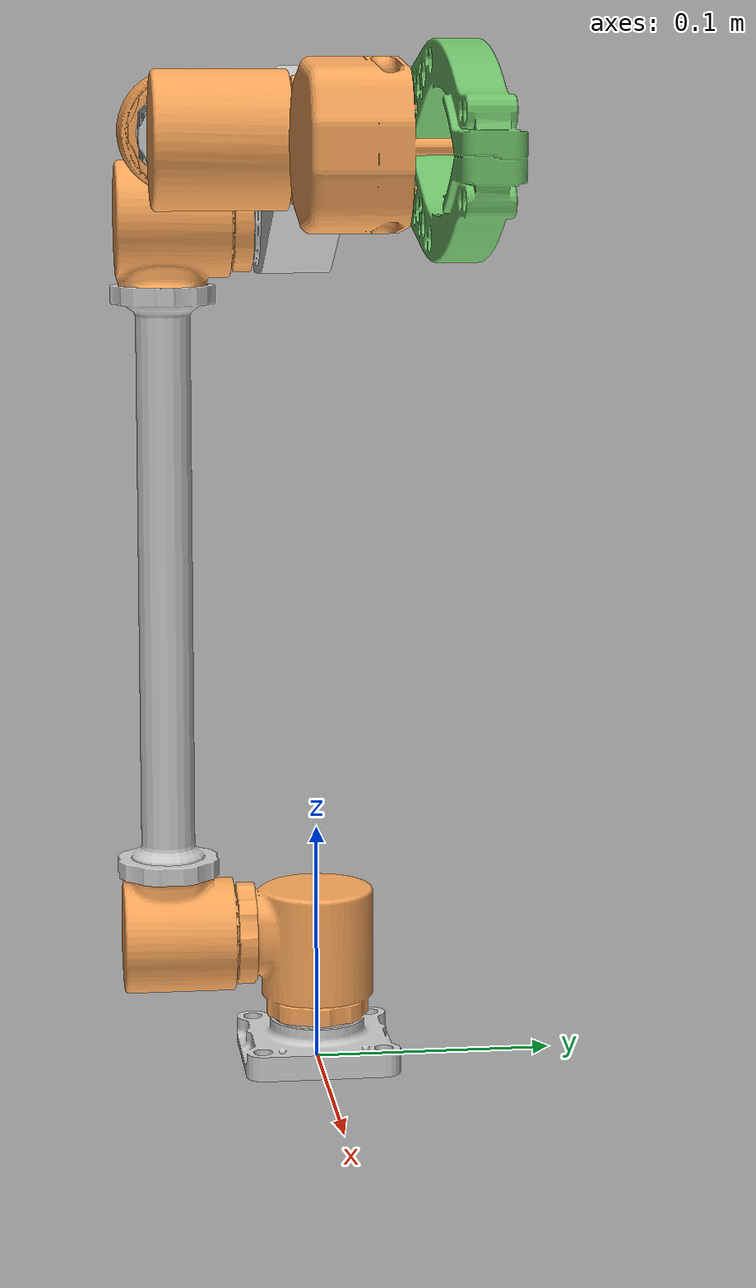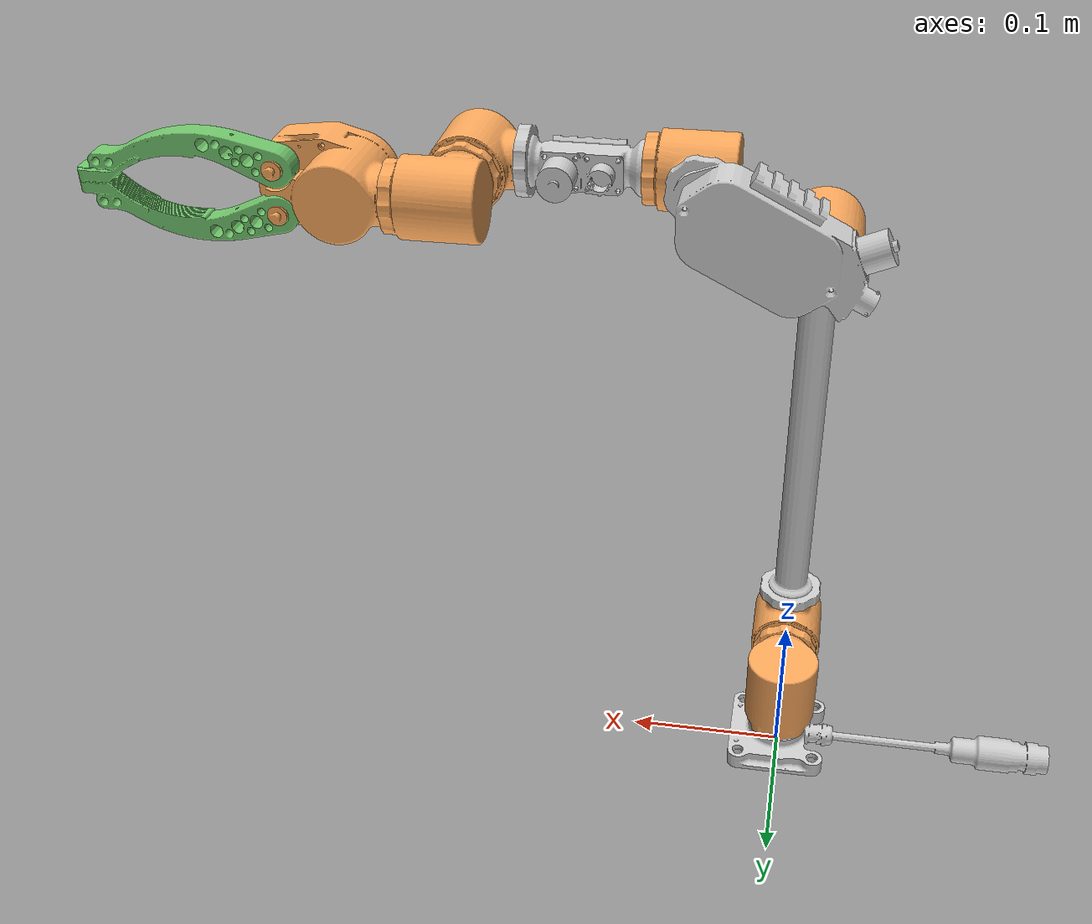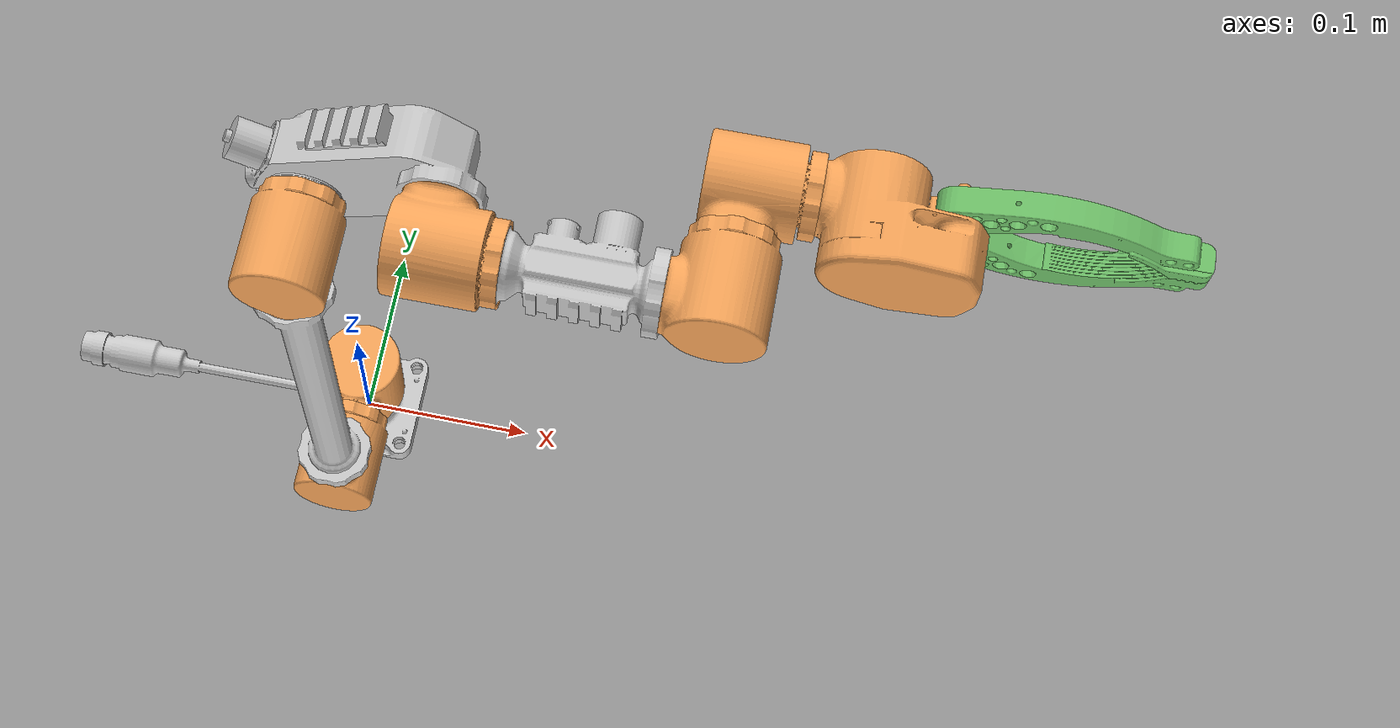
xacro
<?xml version="1.0"?>
<robot name="hdt_arm" xmlns:xacro="http://www.ros.org/wiki/xacro">

    <!-- constants -->
    <xacro:property name="M_PI" value="3.1415926535897931"/>
    <xacro:property name="pos_limit" value="${8*M_PI}"/>

    <!-- mechanical constants -->
    <xacro:property name="drive_length" value="0.03855"/>
    <xacro:property name="drive_offset" value="0.02455"/>
    <xacro:property name="tube_diameter" value="0.0515"/>
    <xacro:property name="tube1_length" value="0.349546"/>
    <xacro:property name="tube2_length" value="0.33294"/>
    <xacro:property name="pedestal_to_drive" value="0.05515"/>
    <xacro:property name="drive_to_drive" value="0.06275"/>
    <xacro:property name="prox_span" value="0.3004"/>
    <xacro:property name="drive_to_box" value="0.03865"/>
    <xacro:property name="box_tilt" value="0.471238898"/>
    <xacro:property name="box_length" value="0.080"/>
    <xacro:property name="box_to_drive" value="0.03517"/>
    <xacro:property name="distal_mid" value="0.07295"/>
    <xacro:property name="distal_length" value="0.13825"/>
    <xacro:property name="finger_forward" value="0.036761"/>
    <xacro:property name="finger_lateral" value="0.0135"/>

    <!-- control constants -->
    <xacro:property name="drive_velocity" value="${M_PI/4}"/>

    <!-- materials -->
    <material name="drive_color">
        <color rgba="${250/255} ${167/255} ${91/255} 1.0"/>
    </material>

    <material name="link_color">
        <color rgba="${204/255} ${204/255} ${204/255} 1.0"/>
    </material>

    <material name="finger_color">
        <color rgba="${112/255} ${195/255} ${106/255} 1.0"/>
    </material>

    <xacro:property name="A24_pincer_ratio" value="0.86" />

    <!--A35 drive simplified collision properties-->
    <xacro:property name="A24_collision_radius" value="0.025"/>
    <xacro:property name="A24_collision_length" value="0.07"/>
    <xacro:property name="A24_collision_offset" value="-0.01"/>

     <!-- default inertia -->
     <xacro:macro name="default_inertia">
           <inertia
           ixx="0.005" ixy="0.0" ixz="0.0"
           iyy="0.005" iyz="0.0"
           izz="0.005"/>
     </xacro:macro>

    <!-- segment 0 -->
    <link name="base_link"/>

    <!-- pedestal -->
    <joint name="pedestal_joint" type="fixed">
        <origin xyz="0 0 0" rpy="0 0 0"/>
        <parent link="base_link"/>
        <child link="pedestal_link"/>
    </joint>

    <link name="pedestal_link">
        <collision>
            <origin xyz="0 0 0" rpy="0 0 0"/>
            <geometry>
                <mesh filename="package://hdt_6dof_a24_pincer_description/meshes/H021285 - SHAREABLE - A24 Q PEDESTAL ASSY - EMD_1.STL"/>
            </geometry>
        </collision>

        <visual>
            <origin xyz="0 0 0" rpy="0 0 0"/>
            <geometry>
                <mesh filename="package://hdt_6dof_a24_pincer_description/meshes/H021285 - SHAREABLE - A24 Q PEDESTAL ASSY - EMD_1.STL"/>
            </geometry>
            <material name="link_color"/>
        </visual>

        <inertial>
            <origin xyz="0 0 0" rpy="0 0 0"/>
            <mass value="0"/>
            <xacro:default_inertia />
        </inertial>
    </link>

    <!-- drive 1 -->
    <joint name="joint1" type="revolute">
        <axis xyz="0 0 1"/>
        <limit effort="60.0" lower="${-pos_limit}" upper="${pos_limit}" velocity="${drive_velocity}"/>
        <origin xyz="0 0 ${pedestal_to_drive}" rpy="0 0 ${-M_PI/2}"/>
        <parent link="pedestal_link"/>
        <child link="drive1_link"/>
        <dynamics damping="0.7" friction="0.0"/>
    </joint>

    <link name="drive1_link">
      <collision>
        <origin xyz="0 0 ${A24_collision_offset}" rpy="0 0 0" />
        <geometry>
          <cylinder radius="${A24_collision_radius}" length="${A24_collision_length}"/>
        </geometry>
      </collision>

        <visual>
            <origin xyz="0 0 0" rpy="0 0 0"/>
            <geometry>
                <mesh filename="package://hdt_6dof_a24_pincer_description/meshes/H020840 - SHAREABLE - A24 DRIVE MODULE - EMD_1.STL"/>
            </geometry>
            <material name="drive_color"/>
        </visual>

        <inertial>
            <origin xyz="0 0 0" rpy="0 0 0"/>
            <mass value="0"/>
            <xacro:default_inertia />
        </inertial>
    </link>

    <!-- drive 2 -->
    <joint name="joint2" type="revolute">
        <axis xyz="0 0 1"/>
        <limit effort="60.0" lower="${-M_PI/2}" upper="${M_PI/2}" velocity="${drive_velocity}"/>
        <origin xyz="${drive_to_drive} 0 0" rpy="${M_PI} ${-M_PI/2} 0"/>
        <parent link="drive1_link"/>
        <child link="drive2_link"/>
        <dynamics damping="0.7" friction="0.0"/>
    </joint>

    <link name="drive2_link">
      <collision>
        <origin xyz="0 0 ${A24_collision_offset}" rpy="0 0 0" />
        <geometry>
          <cylinder radius="${A24_collision_radius}" length="${A24_collision_length}"/>
        </geometry>
      </collision>

        <visual>
            <origin xyz="0 0 0" rpy="0 0 0"/>
            <geometry>
                <mesh filename="package://hdt_6dof_a24_pincer_description/meshes/H020840 - SHAREABLE - A24 DRIVE MODULE - EMD_1.STL"/>
            </geometry>
            <material name="drive_color"/>
        </visual>

        <inertial>
            <origin xyz="0 0 0" rpy="0 0 0"/>
            <mass value="0"/>
            <xacro:default_inertia />
        </inertial>
    </link>

    <!-- proximal tube -->
    <joint name="proximal_tube_joint" type="fixed">
        <origin xyz="${prox_span/2} 0 0" rpy="0 0 0" />
        <parent link="drive2_link"/>
        <child link="proximal_tube_link"/>
    </joint>

    <link name="proximal_tube_link">
        <collision>
            <origin xyz="0 0 0" rpy="0 0 0"/>
            <geometry>
                <mesh filename="package://hdt_6dof_a24_pincer_description/meshes/H021435 - SHAREABLE - A24 PROXIMAL TUBE ASSY - EMD_1.STL"/>
            </geometry>
        </collision>

        <visual>
            <origin xyz="0 0 0" rpy="0 0 0"/>
            <geometry>
               <mesh filename="package://hdt_6dof_a24_pincer_description/meshes/H021435 - SHAREABLE - A24 PROXIMAL TUBE ASSY - EMD_1.STL"/>
            </geometry>
            <material name="link_color"/>
        </visual>

        <inertial>
            <origin xyz="0 0 0" rpy="0 0 0"/>
            <mass value="0"/>
            <xacro:default_inertia />
        </inertial>
    </link>

    <!-- drive 3 link - place holder for drive housing model -->
    <joint name="drive3_housing_joint" type="fixed">
        <origin xyz="${prox_span/2} 0 0" rpy="0 0 ${M_PI}"/>
        <parent link="proximal_tube_link"/>
        <child link="drive3_housing_link"/>
    </joint>

    <link name="drive3_housing_link">
      <collision>
        <origin xyz="0 0 ${A24_collision_offset}" rpy="0 0 0" />
        <geometry>
          <cylinder radius="${A24_collision_radius}" length="${A24_collision_length}"/>
        </geometry>
      </collision>

        <visual>
            <origin xyz="0 0 0" rpy="0 0 0"/>
            <geometry>
               <mesh filename="package://hdt_6dof_a24_pincer_description/meshes/H020840 - SHAREABLE - A24 DRIVE MODULE - EMD_1.STL"/>
            </geometry>
            <material name="drive_color"/>
        </visual>

    </link>

  <!-- drive 3 -->
    <joint name="joint3" type="revolute">
        <axis xyz="0 0 1"/>
        <limit effort="60.0" lower="-1.5708" upper="3.5" velocity="${drive_velocity}"/>
        <origin xyz="0 0 0" rpy="0 0 ${box_tilt-M_PI}"/>
        <parent link="drive3_housing_link"/>
        <child link="drive3_link"/>
        <dynamics damping="0.7" friction="0.0"/>
    </joint>

    <link name="drive3_link">

        <inertial>
            <origin xyz="0 0 0" rpy="0 0 0"/>
            <mass value="0"/>
            <xacro:default_inertia />
        </inertial>
    </link>

  <!-- elbow box -->
    <joint name="elbow_box_joint" type="fixed">
        <origin xyz="0 0 ${-drive_to_box}" rpy="0 0 ${-M_PI/2}"/>
        <parent link="drive3_link"/>
        <child link="elbow_box_link"/>
        <dynamics damping="0.7" friction="0.0"/>
    </joint>

    <link name="elbow_box_link">
        <collision>
            <origin xyz="0 0 0" rpy="0 0 0"/>
            <geometry>
                <mesh filename="package://hdt_6dof_a24_pincer_description/meshes/H021330 - SHAREABLE - A24 CRS-I ELBOW BRACKET COMPUTER ASSY - EMD_1.STL"/>
            </geometry>
        </collision>

        <visual>
            <origin xyz="0 0 0" rpy="0 0 0"/>
            <geometry>
               <mesh filename="package://hdt_6dof_a24_pincer_description/meshes/H021330 - SHAREABLE - A24 CRS-I ELBOW BRACKET COMPUTER ASSY - EMD_1.STL"/>
            </geometry>
            <material name="link_color"/>
        </visual>

        <inertial>
            <origin xyz="0 0 0" rpy="0 0 0"/>
            <mass value="0"/>
            <xacro:default_inertia />
        </inertial>
    </link>

<!-- drive 4 link - place holder for drive housing model -->
    <joint name="drive4_housing_joint" type="fixed">
        <origin xyz="${box_length} 0 ${box_to_drive}" rpy="0 ${M_PI/2} ${M_PI-box_tilt}"/>
        <parent link="elbow_box_link"/>
        <child link="drive4_housing_link"/>
    </joint>

    <link name="drive4_housing_link">
      <collision>
        <origin xyz="0 0 ${A24_collision_offset}" rpy="0 0 0" />
        <geometry>
          <cylinder radius="${A24_collision_radius}" length="${A24_collision_length}"/>
        </geometry>
      </collision>

        <visual>
            <origin xyz="0 0 0" rpy="0 0 0"/>
            <geometry>
               <mesh filename="package://hdt_6dof_a24_pincer_description/meshes/H020840 - SHAREABLE - A24 DRIVE MODULE - EMD_1.STL"/>
            </geometry>
            <material name="drive_color"/>
        </visual>

    </link>

  <!-- drive 4 -->
    <joint name="joint4" type="revolute">
        <axis xyz="0 0 1"/>
        <limit effort="60.0" lower="${-pos_limit}" upper="${pos_limit}" velocity="${drive_velocity}"/>
        <origin xyz="0 0 0" rpy="0 0 0"/>
        <parent link="drive4_housing_link"/>
        <child link="drive4_link"/>
        <dynamics damping="0.7" friction="0.0"/>
    </joint>

    <link name="drive4_link">

        <inertial>
            <origin xyz="0 0 0" rpy="0 0 0"/>
            <mass value="0"/>
            <xacro:default_inertia />
        </inertial>
    </link>

<!-- distal tube -->
    <joint name="distal_tube_joint" type="fixed">
        <origin xyz="0 0 ${-distal_mid}" rpy="0 0 0" />
        <parent link="drive4_link"/>
        <child link="distal_tube_link"/>
    </joint>

    <link name="distal_tube_link">
        <collision>
            <origin xyz="0 0 0" rpy="${M_PI} 0 0"/>
            <geometry>
                <mesh filename="package://hdt_6dof_a24_pincer_description/meshes/H021436 - SHAREABLE - A24 DISTAL TUBE ASSY - EMD_1.STL"/>
            </geometry>
        </collision>

        <visual>
            <origin xyz="0 0 0" rpy="${M_PI} 0 0"/>
            <geometry>
               <mesh filename="package://hdt_6dof_a24_pincer_description/meshes/H021436 - SHAREABLE - A24 DISTAL TUBE ASSY - EMD_1.STL"/>
            </geometry>
            <material name="link_color"/>
        </visual>

        <inertial>
            <origin xyz="0 0 0" rpy="0 0 0"/>
            <mass value="0"/>
            <xacro:default_inertia />
        </inertial>
    </link>

    <!-- drive 5 link - place holder for drive housing model -->
    <joint name="drive5_housing_joint" type="fixed">
        <origin xyz="0 0 ${-distal_length + distal_mid}" rpy="0 ${-M_PI/2} 0"/>
        <parent link="distal_tube_link"/>
        <child link="drive5_housing_link"/>
    </joint>

    <link name="drive5_housing_link">
      <collision>
        <origin xyz="0 0 ${A24_collision_offset}" rpy="0 0 0" />
        <geometry>
          <cylinder radius="${A24_collision_radius}" length="${A24_collision_length}"/>
        </geometry>
      </collision>

        <visual>
            <origin xyz="0 0 0" rpy="0 0 0"/>
            <geometry>
               <mesh filename="package://hdt_6dof_a24_pincer_description/meshes/H020840 - SHAREABLE - A24 DRIVE MODULE - EMD_1.STL"/>
            </geometry>
            <material name="drive_color"/>
        </visual>

    </link>

  <!-- drive 5 -->
    <joint name="joint5" type="revolute">
        <axis xyz="0 0 1"/>
        <limit effort="60.0" lower="-2.3" upper="2.3" velocity="${drive_velocity}"/>
        <origin xyz="0 0 0" rpy="0 0 0"/>
        <parent link="drive5_housing_link"/>
        <child link="drive5_link"/>
        <dynamics damping="0.7" friction="0.0"/>
    </joint>

    <link name="drive5_link">

        <inertial>
            <origin xyz="0 0 0" rpy="0 0 0"/>
            <mass value="0"/>
            <xacro:default_inertia />
        </inertial>
    </link>

    <!-- drive 6 link - place holder for drive housing model -->
    <joint name="drive6_housing_joint" type="fixed">
        <origin xyz="0 0 ${-drive_to_drive}" rpy="0 ${-M_PI/2} ${M_PI}"/>
        <parent link="drive5_link"/>
        <child link="drive6_housing_link"/>
    </joint>

    <link name="drive6_housing_link">
      <collision>
        <origin xyz="0 0 ${A24_collision_offset}" rpy="0 0 0" />
        <geometry>
          <cylinder radius="${A24_collision_radius}" length="${A24_collision_length}"/>
        </geometry>
      </collision>

        <visual>
            <origin xyz="0 0 0" rpy="0 0 0"/>
            <geometry>
               <mesh filename="package://hdt_6dof_a24_pincer_description/meshes/H020840 - SHAREABLE - A24 DRIVE MODULE - EMD_1.STL"/>
            </geometry>
            <material name="drive_color"/>
        </visual>

    </link>

  <!-- drive 6 -->
    <joint name="joint6" type="revolute">
        <axis xyz="0 0 1"/>
        <limit effort="60.0" lower="${-pos_limit}" upper="${pos_limit}" velocity="${drive_velocity}"/>
        <origin xyz="0 0 0" rpy="0 0 0"/>
        <parent link="drive6_housing_link"/>
        <child link="drive6_link"/>
        <dynamics damping="0.7" friction="0.0"/>
    </joint>

    <link name="drive6_link">

        <inertial>
            <origin xyz="0 0 0" rpy="0 0 0"/>
            <mass value="0"/>
            <xacro:default_inertia />
        </inertial>
    </link>

<!-- pincer link - place holder for pincer housing model -->
    <joint name="pincer_housing_joint" type="fixed">
        <origin xyz="0 0 ${-drive_to_drive}" rpy="0 ${-M_PI/2} 0"/>
        <parent link="drive6_link"/>
        <child link="pincer_housing_link"/>
    </joint>

    <link name="pincer_housing_link">
        <collision>
            <origin xyz="0 0 0" rpy="0 0 0"/>
            <geometry>
                <mesh filename="package://hdt_6dof_a24_pincer_description/meshes/H021094 - SHAREABLE - A24-P PINCER ASSY, NO FINGERS - EMD_1.STL"/>
            </geometry>
        </collision>

        <visual>
            <origin xyz="0 0 0" rpy="0 0 0"/>
            <geometry>
               <mesh filename="package://hdt_6dof_a24_pincer_description/meshes/H021094 - SHAREABLE - A24-P PINCER ASSY, NO FINGERS - EMD_1.STL"/>
            </geometry>
            <material name="drive_color"/>
        </visual>

    </link>

    <!-- Pincer joint, nothing connected to output link use mimic joints to account for gear ratio beteen output and fingers -->
    <joint name="pincer_joint" type="revolute">
        <hdt id="10" kmin="75" kmax="150" inertia="0.075"/>
        <axis xyz="0 0 1"/>
        <limit effort="48.0" lower="-0.2" upper="0.9" velocity="${M_PI/4}"/>
        <origin xyz="0.0135 0 0.0375" rpy="0 0 0"/>
        <parent link="pincer_housing_link"/>
        <child link="pincer_output"/>
        <dynamics damping="0.7" friction="0.0"/>
    </joint>

    <link name="pincer_output">
    </link>

  <!-- pincer finger left -->
    <joint name="pincerfinger_left" type="revolute">
        <axis xyz="0 0 1"/>
        <limit effort="60.0" lower="0" upper="${M_PI/2}" velocity="${drive_velocity}"/>
        <origin xyz="${-finger_forward} ${-finger_lateral} 0" rpy="0 0 ${-M_PI}"/>
        <parent link="pincer_housing_link"/>
        <child link="pincerfinger_left_link"/>
        <dynamics damping="0.7" friction="0.0"/>
        <mimic joint="pincer_joint" multiplier="${A24_pincer_ratio}" offset="0.0"/>
    </joint>

    <link name="pincerfinger_left_link">
        <collision>
            <origin xyz="0 0 0" rpy="0 0 0"/>
            <geometry>
                <mesh filename="package://hdt_6dof_a24_pincer_description/meshes/H020868 - SHAREABLE - A24-P PINCER FINGER, OVERMOLD ASSY - EMD_1.STL"/>
            </geometry>
        </collision>

        <visual>
            <origin xyz="0 0 0" rpy="0 0 0"/>
            <geometry>
               <mesh filename="package://hdt_6dof_a24_pincer_description/meshes/H020868 - SHAREABLE - A24-P PINCER FINGER, OVERMOLD ASSY - EMD_1.STL"/>
            </geometry>
            <material name="finger_color"/>
        </visual>
        <inertial>
            <origin xyz="0 0 0" rpy="0 0 0"/>
            <mass value="0"/>
            <xacro:default_inertia />
        </inertial>
    </link>

<!-- pincer finger left -->
    <joint name="pincerfinger_right" type="revolute">
        <axis xyz="0 0 1"/>
        <limit effort="60.0" lower="${-2*M_PI}" upper="${2*M_PI}" velocity="${drive_velocity}"/>
        <origin xyz="${-finger_forward} ${finger_lateral} 0" rpy="${M_PI} 0 ${-M_PI}"/>
        <parent link="pincer_housing_link"/>
        <child link="pincerfinger_right_link"/>
        <dynamics damping="0.7" friction="0.0"/>
        <mimic joint="pincer_joint" multiplier="${A24_pincer_ratio}" offset="0.0"/>
    </joint>

    <link name="pincerfinger_right_link">
        <collision>
            <origin xyz="0 0 0" rpy="0 0 0"/>
            <geometry>
                <mesh filename="package://hdt_6dof_a24_pincer_description/meshes/H020868 - SHAREABLE - A24-P PINCER FINGER, OVERMOLD ASSY - EMD_1.STL"/>
            </geometry>
        </collision>

        <visual>
            <origin xyz="0 0 0" rpy="0 0 0"/>
            <geometry>
               <mesh filename="package://hdt_6dof_a24_pincer_description/meshes/H020868 - SHAREABLE - A24-P PINCER FINGER, OVERMOLD ASSY - EMD_1.STL"/>
            </geometry>
            <material name="finger_color"/>
        </visual>
        <inertial>
            <origin xyz="0 0 0" rpy="0 0 0"/>
            <mass value="0"/>
            <xacro:default_inertia />
        </inertial>
    </link>

    <!-- endpoint -->
    <joint name="endpoint_joint" type="fixed">
        <origin xyz="-0.15 0 0" rpy="0 0 ${M_PI}"/>
        <parent link="pincer_housing_link"/>
        <child link="endpoint_link"/>
    </joint>

    <link name="endpoint_link">
    </link>
</robot>
